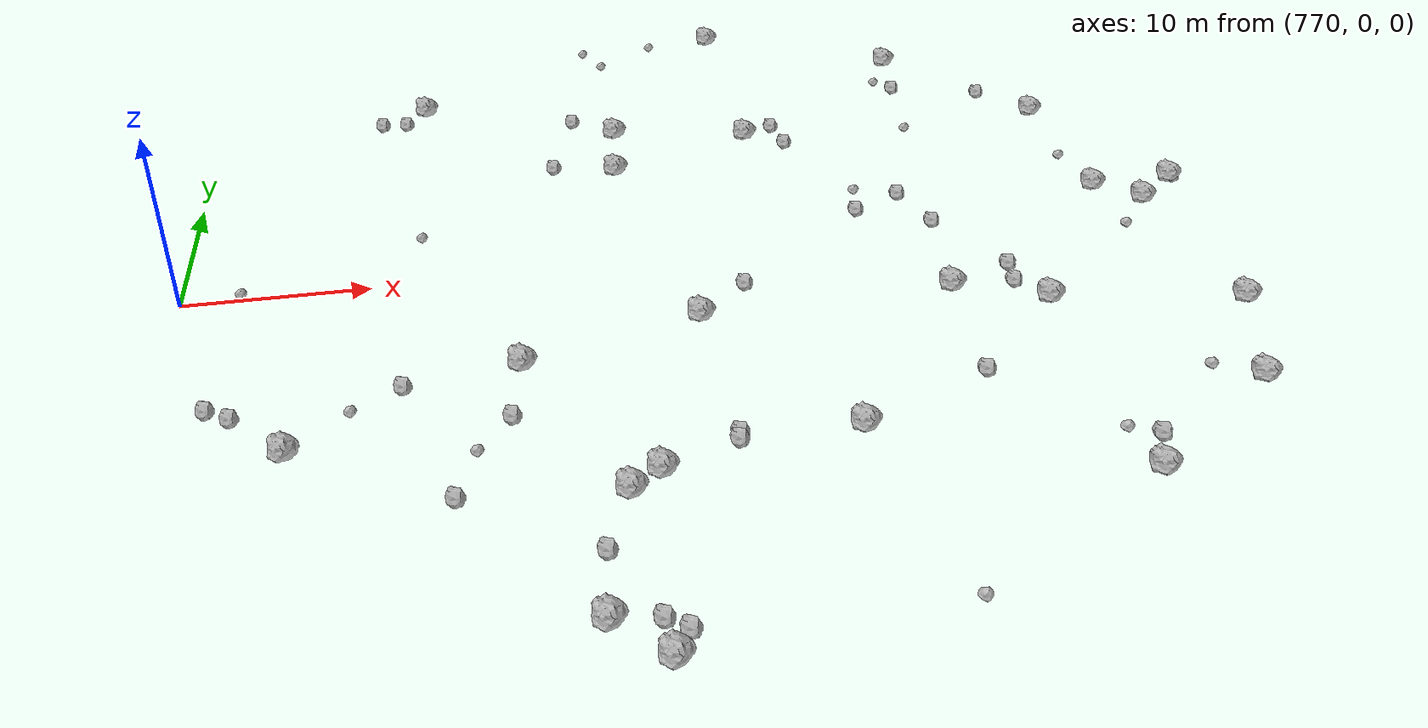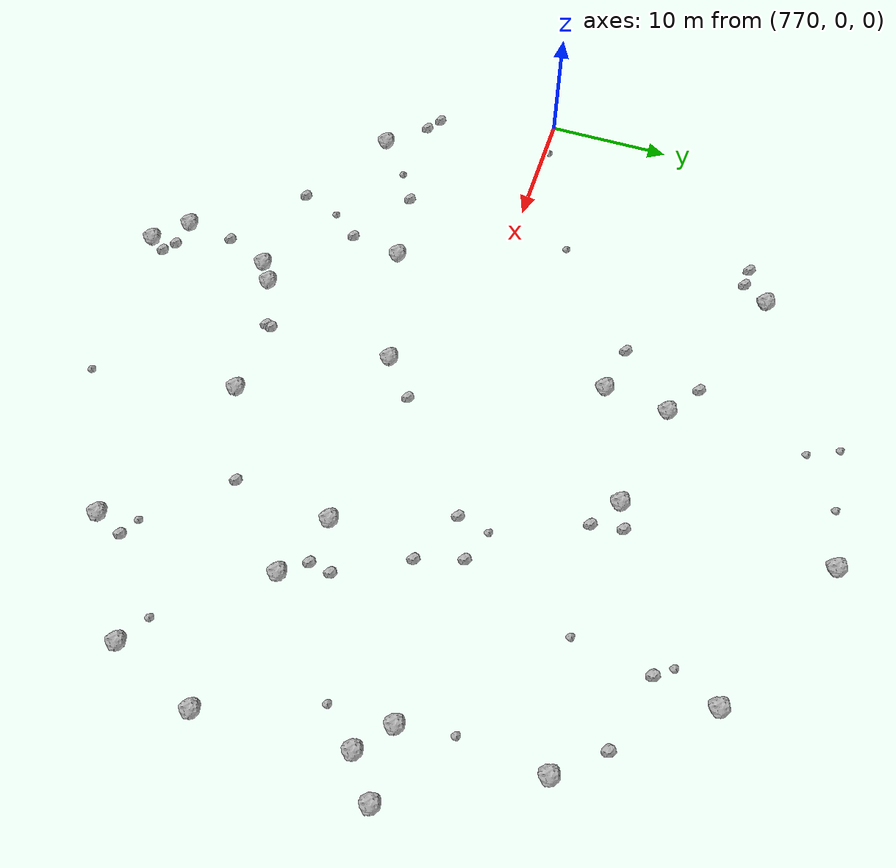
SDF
<sdf version="1.6">
 <world name="default">
  <include><uri>model://sun</uri></include>
  <model name="rock1_20_4">
   <include><uri>model://rock1</uri><pose>825.4681221450936 1.9460376645458553 0.5 0 0 0</pose></include>
  </model>
  <model name="rock1_20_5">
   <include><uri>model://rock1</uri><pose>826.2975503470126 -9.018322952196819 0.5 0 0 0</pose></include>
  </model>
  <model name="rock1_20_6">
   <include><uri>model://rock1</uri><pose>792.3273343697261 -28.309291551433343 0.5 0 0 0</pose></include>
  </model>
  <model name="rock1_20_7">
   <include><uri>model://rock1</uri><pose>776.4899831977035 -13.480177810997269 0.5 0 0 0</pose></include>
  </model>
  <model name="rock1_20_8">
   <include><uri>model://rock1</uri><pose>791.853073784986 -18.594901273318648 0.5 0 0 0</pose></include>
  </model>
  <model name="rock1_20_9">
   <include><uri>model://rock1</uri><pose>803.6489456238205 29.613163279125686 0.5 0 0 0</pose></include>
  </model>
  <model name="rock1_20_10">
   <include><uri>model://rock1</uri><pose>783.0910066532182 21.062425903171373 0.5 0 0 0</pose></include>
  </model>
  <model name="rock1_20_11">
   <include><uri>model://rock1</uri><pose>787.650884671514 -8.468898084369812 0.5 0 0 0</pose></include>
  </model>
  <model name="rock1_20_12">
   <include><uri>model://rock1</uri><pose>797.1823183187196 -5.7569179415413245 0.5 0 0 0</pose></include>
  </model>
  <model name="rock1_20_13">
   <include><uri>model://rock1</uri><pose>815.5983239678321 23.71053120390171 0.5 0 0 0</pose></include>
  </model>
  <model name="rock1_20_14">
   <include><uri>model://rock1</uri><pose>815.9281737878115 -7.249550273141768 0.5 0 0 0</pose></include>
  </model>
  <model name="rock1_20_15">
   <include><uri>model://rock1</uri><pose>815.7595574609547 -21.18889566341163 0.5 0 0 0</pose></include>
  </model>
  <model name="rock1_20_16">
   <include><uri>model://rock1</uri><pose>823.1309177321913 3.958313363101425 0.5 0 0 0</pose></include>
  </model>
  <model name="rock1_20_17">
   <include><uri>model://rock1</uri><pose>823.7536425568609 -15.635398394295862 0.5 0 0 0</pose></include>
  </model>
  <model name="rock1_20_18">
   <include><uri>model://rock1</uri><pose>803.2806840001987 -15.97172833743802 0.5 0 0 0</pose></include>
  </model>
  <model name="rock1_20_19">
   <include><uri>model://rock1</uri><pose>823.0823295054537 14.313884252147389 0.5 0 0 0</pose></include>
  </model>
  <model name="rock1_20_20">
   <include><uri>model://rock1</uri><pose>790.0112874379964 -26.004160290759152 0.5 0 0 0</pose></include>
  </model>
  <model name="rock1_20_21">
   <include><uri>model://rock1</uri><pose>828.1651186501842 4.136927673406021 0.5 0 0 0</pose></include>
  </model>
  <model name="rock1_20_22">
   <include><uri>model://rock1</uri><pose>793.4008702013635 -17.499488617531 0.5 0 0 0</pose></include>
  </model>
  <model name="rock1_20_23">
   <include><uri>model://rock1</uri><pose>794.6060335372092 10.760067131343945 0.5 0 0 0</pose></include>
  </model>
  <model name="rock1_20_24">
   <include><uri>model://rock1</uri><pose>811.1036102397579 -5.285380653166424 0.5 0 0 0</pose></include>
  </model>
  <model name="rock1_20_25">
   <include><uri>model://rock1</uri><pose>803.4604988772993 14.12985710505096 0.5 0 0 0</pose></include>
  </model>
  <model name="rock1_20_26">
   <include><uri>model://rock1</uri><pose>795.1231493932526 15.735221464841672 0.5 0 0 0</pose></include>
  </model>
  <model name="rock2_20_0">
   <include><uri>model://rock2</uri><pose>793.0848717265033 -27.002356514479263 0.3 0 0 0</pose></include>
  </model>
  <model name="rock2_20_1">
   <include><uri>model://rock2</uri><pose>810.95345221602 4.856792061413479 0.3 0 0 0</pose></include>
  </model>
  <model name="rock2_20_2">
   <include><uri>model://rock2</uri><pose>812.0304859548747 1.4276423382975594 0.3 0 0 0</pose></include>
  </model>
  <model name="rock2_20_3">
   <include><uri>model://rock2</uri><pose>792.1433676565746 -26.276548455727912 0.3 0 0 0</pose></include>
  </model>
  <model name="rock2_20_4">
   <include><uri>model://rock2</uri><pose>797.1944488072104 -16.032194164388052 0.3 0 0 0</pose></include>
  </model>
  <model name="rock2_20_5">
   <include><uri>model://rock2</uri><pose>805.3179195876003 14.900207796056748 0.3 0 0 0</pose></include>
  </model>
  <model name="rock2_20_6">
   <include><uri>model://rock2</uri><pose>814.7718622383022 -3.7365922135298177 0.3 0 0 0</pose></include>
  </model>
  <model name="rock2_20_7">
   <include><uri>model://rock2</uri><pose>828.3156995272947 4.121600154973393 0.3 0 0 0</pose></include>
  </model>
  <model name="rock2_20_8">
   <include><uri>model://rock2</uri><pose>814.8259459961685 19.188368077749246 0.3 0 0 0</pose></include>
  </model>
  <model name="rock2_20_9">
   <include><uri>model://rock2</uri><pose>808.0033373143673 3.4045284730989493 0.3 0 0 0</pose></include>
  </model>
  <model name="rock2_20_10">
   <include><uri>model://rock2</uri><pose>799.9692612700177 -3.2177626678950766 0.3 0 0 0</pose></include>
  </model>
  <model name="rock2_20_11">
   <include><uri>model://rock2</uri><pose>786.9176332328374 -12.561307175123058 0.3 0 0 0</pose></include>
  </model>
  <model name="rock2_20_12">
   <include><uri>model://rock2</uri><pose>797.3061143838719 -15.56011791430262 0.3 0 0 0</pose></include>
  </model>
  <model name="rock2_20_13">
   <include><uri>model://rock2</uri><pose>772.5541032064309 -9.746233405607136 0.3 0 0 0</pose></include>
  </model>
  <model name="rock2_20_14">
   <include><uri>model://rock2</uri><pose>810.307354149742 -12.847848880959361 0.3 0 0 0</pose></include>
  </model>
  <model name="rock2_20_15">
   <include><uri>model://rock2</uri><pose>820.403419010672 17.568831215129933 0.3 0 0 0</pose></include>
  </model>
  <model name="rock2_20_16">
   <include><uri>model://rock2</uri><pose>814.5110074526203 -5.416763781014637 0.3 0 0 0</pose></include>
  </model>
  <model name="rock2_20_17">
   <include><uri>model://rock2</uri><pose>790.3518718877865 -22.1569087940238 0.3 0 0 0</pose></include>
  </model>
  <model name="rock2_20_18">
   <include><uri>model://rock2</uri><pose>790.8171482590616 11.547658357220854 0.3 0 0 0</pose></include>
  </model>
  <model name="rock2_20_19">
   <include><uri>model://rock2</uri><pose>792.5296180101768 17.691193260257812 0.3 0 0 0</pose></include>
  </model>
  <model name="rock2_20_20">
   <include><uri>model://rock2</uri><pose>816.6743651280051 -18.968020587993358 0.3 0 0 0</pose></include>
  </model>
  <model name="rock2_20_21">
   <include><uri>model://rock2</uri><pose>805.6955852028611 12.555150658238297 0.3 0 0 0</pose></include>
  </model>
  <model name="rock2_20_22">
   <include><uri>model://rock2</uri><pose>781.7882813042837 -9.402253717367401 0.3 0 0 0</pose></include>
  </model>
  <model name="rock2_20_23">
   <include><uri>model://rock2</uri><pose>781.7848784111096 19.17745563337956 0.3 0 0 0</pose></include>
  </model>
  <model name="rock2_20_24">
   <include><uri>model://rock2</uri><pose>780.2474025964981 19.295845347797396 0.3 0 0 0</pose></include>
  </model>
  <model name="rock2_20_25">
   <include><uri>model://rock2</uri><pose>784.1441344565986 -17.897635346489693 0.3 0 0 0</pose></include>
  </model>
  <model name="rock2_20_26">
   <include><uri>model://rock2</uri><pose>773.7571565799951 -10.54985998321812 0.3 0 0 0</pose></include>
  </model>
  <model name="rock3_20_0">
   <include><uri>model://rock3</uri><pose>822.5170009136868 7.938810516510202 0.2 0 0 0</pose></include>
  </model>
  <model name="rock3_20_1">
   <include><uri>model://rock3</uri><pose>813.9816474410625 13.277640052378047 0.2 0 0 0</pose></include>
  </model>
  <model name="rock3_20_2">
   <include><uri>model://rock3</uri><pose>823.1868438783448 -0.7071877261899537 0.2 0 0 0</pose></include>
  </model>
  <model name="rock3_20_3">
   <include><uri>model://rock3</uri><pose>808.5074112939463 5.795995181298821 0.2 0 0 0</pose></include>
  </model>
  <model name="rock3_20_4">
   <include><uri>model://rock3</uri><pose>785.1935660612734 -14.822931691021886 0.2 0 0 0</pose></include>
  </model>
  <model name="rock3_20_5">
   <include><uri>model://rock3</uri><pose>815.284005102331 -18.271860501708495 0.2 0 0 0</pose></include>
  </model>
  <model name="rock3_20_6">
   <include><uri>model://rock3</uri><pose>799.2045555389516 29.004969419420206 0.2 0 0 0</pose></include>
  </model>
  <model name="rock3_20_7">
   <include><uri>model://rock3</uri><pose>794.3080728894064 28.645160904929476 0.2 0 0 0</pose></include>
  </model>
  <model name="rock3_20_8">
   <include><uri>model://rock3</uri><pose>813.9209105650408 20.417133226646037 0.2 0 0 0</pose></include>
  </model>
  <model name="rock3_20_9">
   <include><uri>model://rock3</uri><pose>821.5282686989163 -14.357633295128476 0.2 0 0 0</pose></include>
  </model>
  <model name="rock3_20_10">
   <include><uri>model://rock3</uri><pose>805.0876791339242 -27.30345470360129 0.2 0 0 0</pose></include>
  </model>
  <model name="rock3_20_11">
   <include><uri>model://rock3</uri><pose>779.3275596839445 -10.921210386158617 0.2 0 0 0</pose></include>
  </model>
  <model name="rock3_20_12">
   <include><uri>model://rock3</uri><pose>795.3928598249869 26.295189808851596 0.2 0 0 0</pose></include>
  </model>
  <model name="rock3_20_13">
   <include><uri>model://rock3</uri><pose>782.7115952252844 4.53401361246771 0.2 0 0 0</pose></include>
  </model>
  <model name="rock3_20_14">
   <include><uri>model://rock3</uri><pose>773.1187131248905 0.37711547556899916 0.2 0 0 0</pose></include>
  </model>
 </world>
</sdf>
